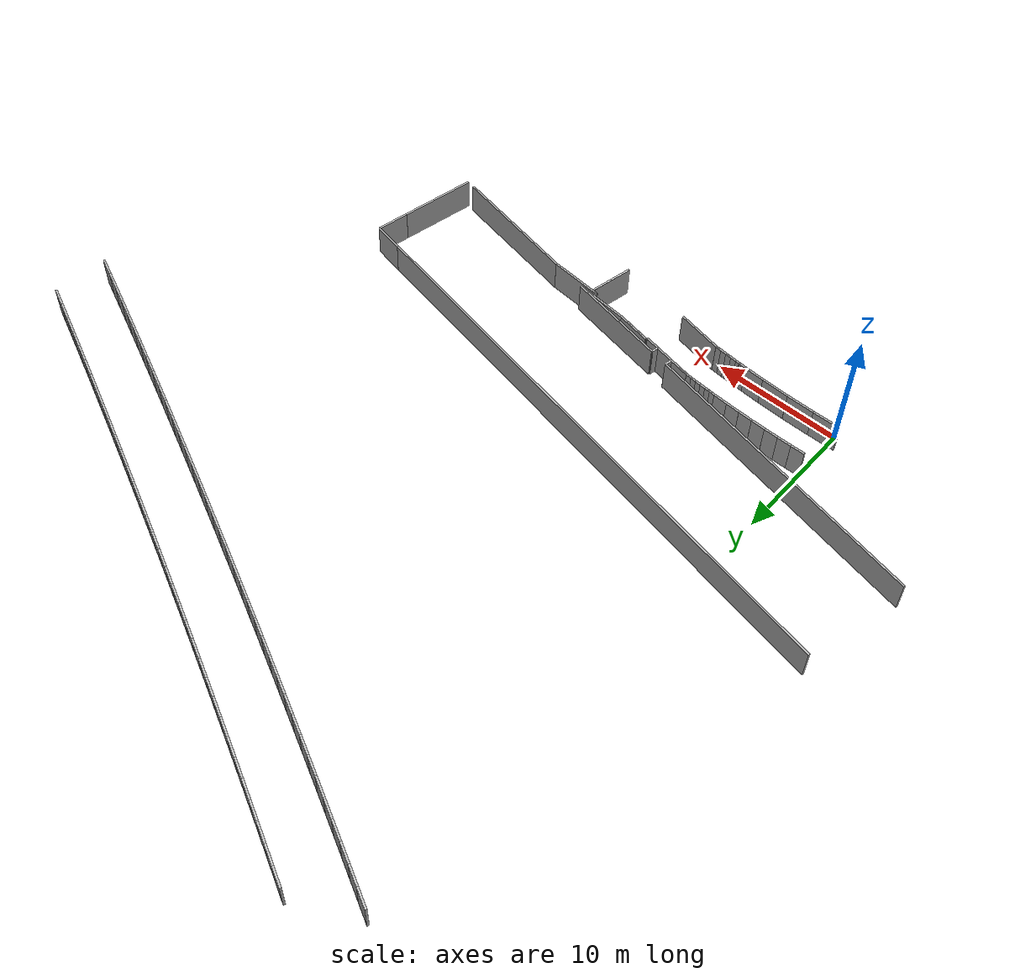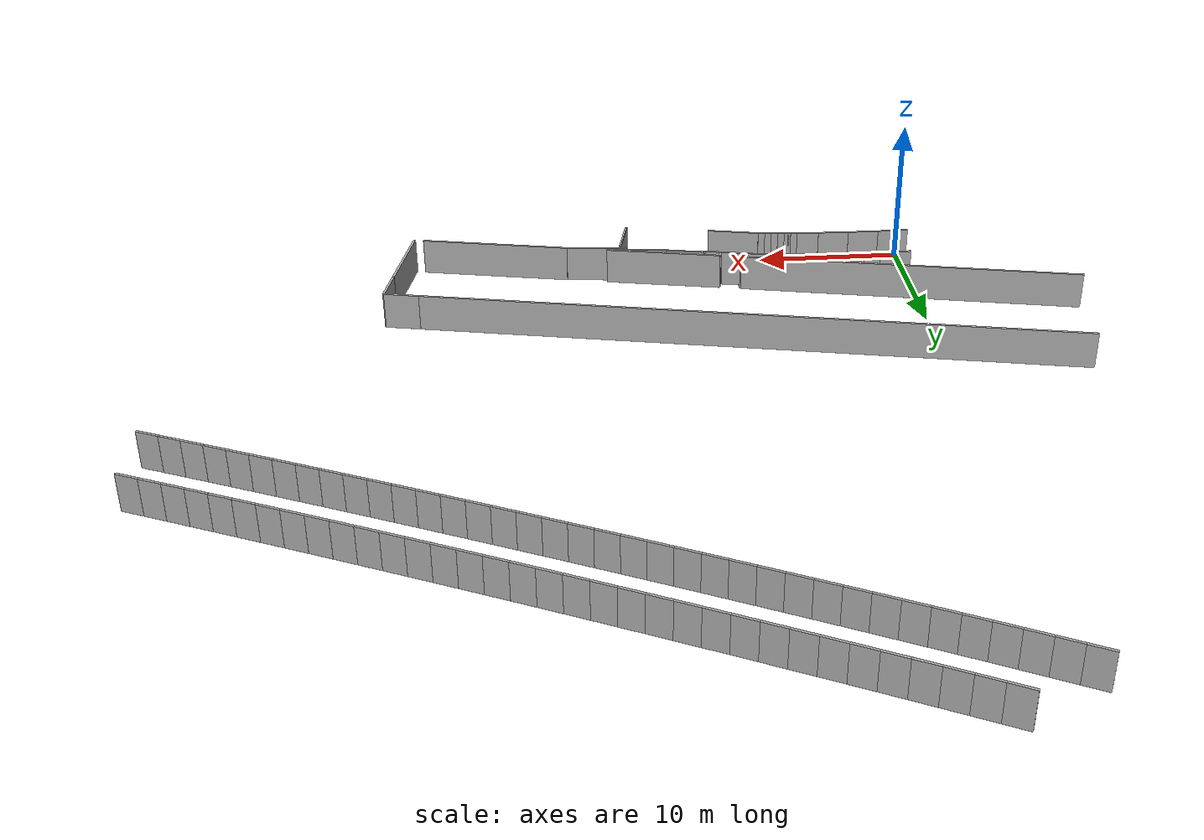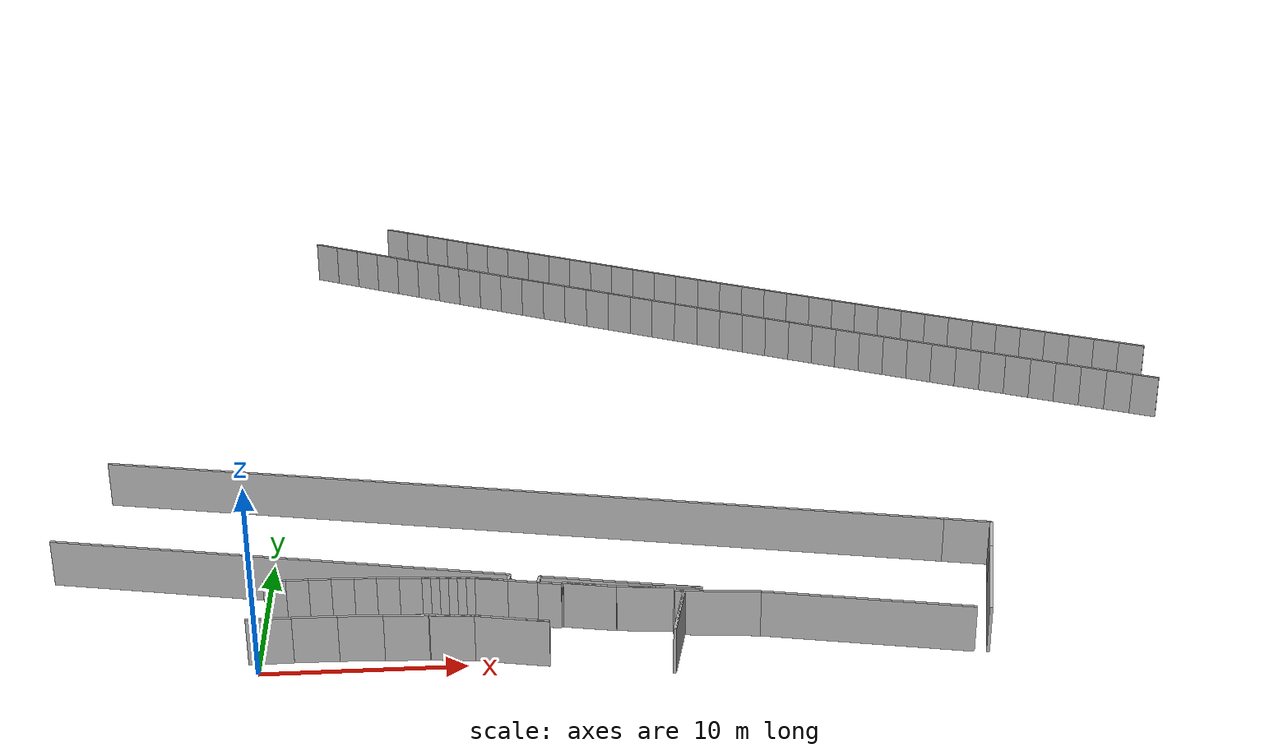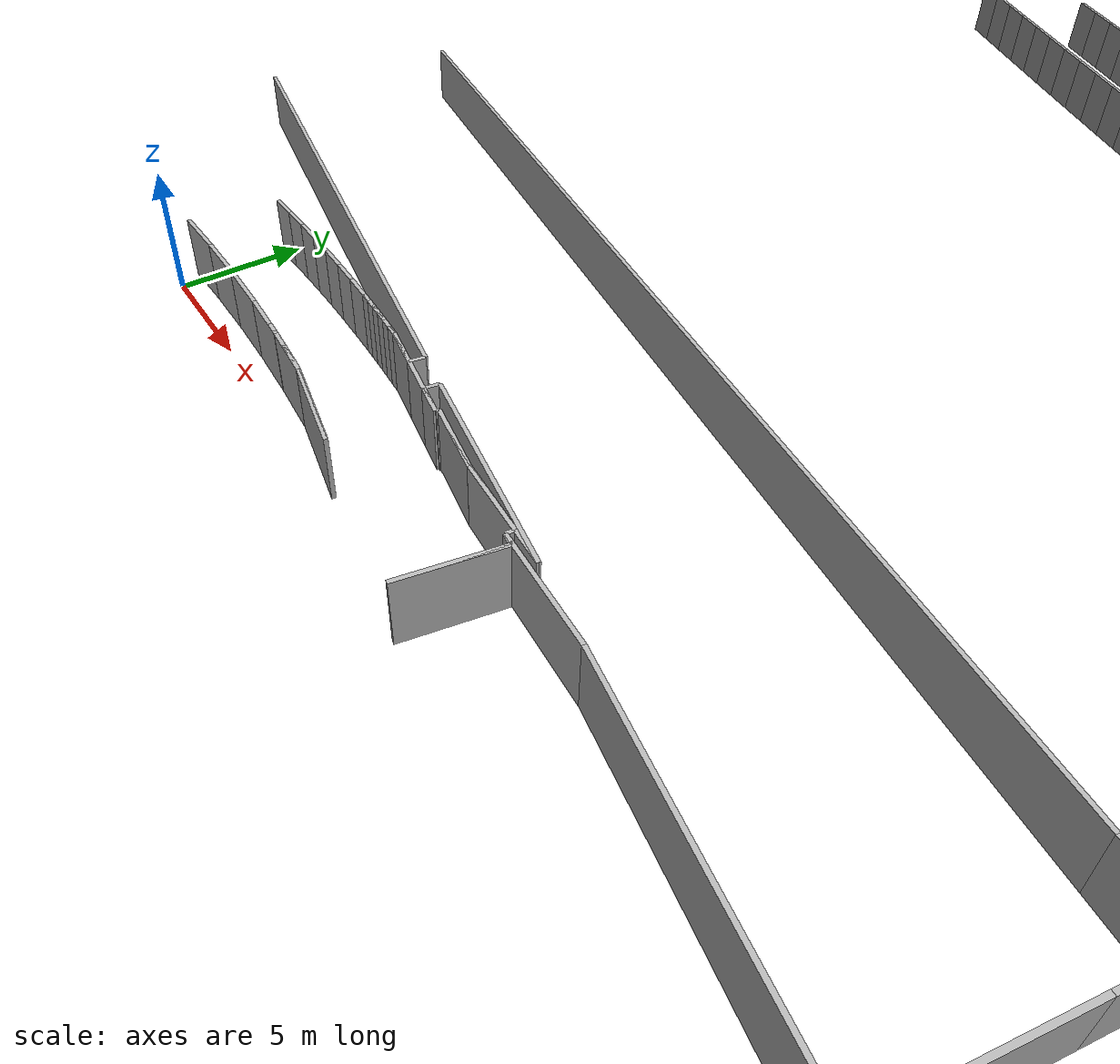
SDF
<sdf version="1.6">
 <model name="sps_1405">
  <static>1</static>
  <allow_auto_disable>0</allow_auto_disable>
  <link name="Wall19">
   <collision name="collision"><geometry><box><size>0.558052 0.15 2.5</size></box></geometry></collision>
   <visual name="visual">
    <geometry><box><size>0.558052 0.15 2.5</size></box></geometry>
    <transparency>0.0</transparency>
   </visual>
   <pose>13.4909 3.71971 1.25 0 -0 1.37308</pose>
  </link>
  <link name="Wall20">
   <collision name="collision"><geometry><box><size>2.70593 0.15 2.5</size></box></geometry></collision>
   <visual name="visual">
    <geometry><box><size>2.70593 0.15 2.5</size></box></geometry>
    <transparency>0.0</transparency>
   </visual>
   <pose>15.9428 3.06648 1.25 0 -0 2.94384</pose>
  </link>
  <link name="Wall21">
   <collision name="collision"><geometry><box><size>0.432153 0.15 2.5</size></box></geometry></collision>
   <visual name="visual">
    <geometry><box><size>0.432153 0.15 2.5</size></box></geometry>
    <transparency>0.0</transparency>
   </visual>
   <pose>20.2974 2.19389 1.25 0 0 -0.199473</pose>
  </link>
  <link name="Wall22">
   <collision name="collision"><geometry><box><size>2.40359 0.15 2.5</size></box></geometry></collision>
   <visual name="visual">
    <geometry><box><size>2.40359 0.15 2.5</size></box></geometry>
    <transparency>0.0</transparency>
   </visual>
   <pose>35.6465 8.17089 1.25 0 -0 2.9385</pose>
  </link>
  <link name="Wall23">
   <collision name="collision"><geometry><box><size>44.7209 0.15 2.5</size></box></geometry></collision>
   <visual name="visual">
    <geometry><box><size>44.7209 0.15 2.5</size></box></geometry>
    <transparency>0.0</transparency>
   </visual>
   <pose>12.5686 12.9235 1.25 0 -0 2.9385</pose>
  </link>
  <link name="Wall26">
   <collision name="collision"><geometry><box><size>10.4229 0.15 2.5</size></box></geometry></collision>
   <visual name="visual">
    <geometry><box><size>10.4229 0.15 2.5</size></box></geometry>
    <transparency>0.0</transparency>
   </visual>
   <pose>29.3646 0.798586 1.25 0 -0 2.93901</pose>
  </link>
  <link name="Wall112">
   <collision name="collision"><geometry><box><size>23.6286 0.15 2.5</size></box></geometry></collision>
   <visual name="visual">
    <geometry><box><size>23.6286 0.15 2.5</size></box></geometry>
    <transparency>0.0</transparency>
   </visual>
   <pose>0.518974 6.69759 1.25 0 -0 2.93608</pose>
  </link>
  <link name="Wall113">
   <collision name="collision"><geometry><box><size>1.18026 0.15 2.5</size></box></geometry></collision>
   <visual name="visual">
    <geometry><box><size>1.18026 0.15 2.5</size></box></geometry>
    <transparency>0.0</transparency>
   </visual>
   <pose>14.0147 3.33009 1.25 0 -0 2.94369</pose>
  </link>
  <link name="Wall114">
   <collision name="collision"><geometry><box><size>4.19215 0.15 2.5</size></box></geometry></collision>
   <visual name="visual">
    <geometry><box><size>4.19215 0.15 2.5</size></box></geometry>
    <transparency>0.0</transparency>
   </visual>
   <pose>22.1727 2.04191 1.25 0 -0 3.04853</pose>
  </link>
  <link name="Wall280">
   <collision name="collision"><geometry><box><size>0.558807 0.15 2.5</size></box></geometry></collision>
   <visual name="visual">
    <geometry><box><size>0.558807 0.15 2.5</size></box></geometry>
    <transparency>0.0</transparency>
   </visual>
   <pose>12.0295 4.0128 1.25 0 -0 1.3719</pose>
  </link>
  <link name="Wall349">
   <collision name="collision"><geometry><box><size>3.64209 0.15 2.5</size></box></geometry></collision>
   <visual name="visual">
    <geometry><box><size>3.64209 0.15 2.5</size></box></geometry>
    <transparency>0.0</transparency>
   </visual>
   <pose>12.1271 0.179488 1.25 0 -0 2.93845</pose>
  </link>
  <link name="Wall429">
   <collision name="collision"><geometry><box><size>1.63883 0.15 2.5</size></box></geometry></collision>
   <visual name="visual">
    <geometry><box><size>1.63883 0.15 2.5</size></box></geometry>
    <transparency>0.0</transparency>
   </visual>
   <pose>11.1709 3.9001 1.25 0 0 -0.198009</pose>
  </link>
  <link name="Wall430">
   <collision name="collision"><geometry><box><size>4.19215 0.15 2.5</size></box></geometry></collision>
   <visual name="visual">
    <geometry><box><size>4.19215 0.15 2.5</size></box></geometry>
    <transparency>0.0</transparency>
   </visual>
   <pose>19.3564 2.60588 1.25 0 -0 3.04853</pose>
  </link>
  <link name="Wall431">
   <collision name="collision"><geometry><box><size>8.0547 0.15 2.5</size></box></geometry></collision>
   <visual name="visual">
    <geometry><box><size>8.0547 0.15 2.5</size></box></geometry>
    <transparency>0.0</transparency>
   </visual>
   <pose>17.4946 3.20219 1.25 0 -0 2.94387</pose>
  </link>
  <link name="Wall524">
   <collision name="collision"><geometry><box><size>3.50128 0.15 2.5</size></box></geometry></collision>
   <visual name="visual">
    <geometry><box><size>3.50128 0.15 2.5</size></box></geometry>
    <transparency>0.0</transparency>
   </visual>
   <pose>20.1558 0.436477 1.25 0 0 -1.77406</pose>
  </link>
  <link name="Wall525">
   <collision name="collision"><geometry><box><size>2.50024 0.15 2.5</size></box></geometry></collision>
   <visual name="visual">
    <geometry><box><size>2.50024 0.15 2.5</size></box></geometry>
    <transparency>0.0</transparency>
   </visual>
   <pose>36.5713 6.70409 1.25 0 -0 1.36759</pose>
  </link>
  <link name="Wall607">
   <collision name="collision"><geometry><box><size>0.120432 0.15 2.5</size></box></geometry></collision>
   <visual name="visual">
    <geometry><box><size>0.120432 0.15 2.5</size></box></geometry>
    <transparency>0.0</transparency>
   </visual>
   <pose>14.6048 3.27318 1.25 0 0 -1.76253</pose>
  </link>
  <link name="Wall993">
   <collision name="collision"><geometry><box><size>5.98487 0.15 2.5</size></box></geometry></collision>
   <visual name="visual">
    <geometry><box><size>5.98487 0.15 2.5</size></box></geometry>
    <transparency>0.0</transparency>
   </visual>
   <pose>35.7154 2.54878 1.25 0 -0 1.36766</pose>
  </link>
  <link name="Wall1701">
   <collision name="collision"><geometry><box><size>1.1106 0.15 2.5</size></box></geometry></collision>
   <visual name="visual">
    <geometry><box><size>1.1106 0.15 2.5</size></box></geometry>
    <transparency>0.0</transparency>
   </visual>
   <pose>0.546867 4.43138 1.25 0 -0 0.0181918</pose>
  </link>
  <link name="Wall1702">
   <collision name="collision"><geometry><box><size>1.11043 0.15 2.5</size></box></geometry></collision>
   <visual name="visual">
    <geometry><box><size>1.11043 0.15 2.5</size></box></geometry>
    <transparency>0.0</transparency>
   </visual>
   <pose>1.65728 4.44459 1.25 0 -0 0.00560649</pose>
  </link>
  <link name="Wall1703">
   <collision name="collision"><geometry><box><size>1.11038 0.15 2.5</size></box></geometry></collision>
   <visual name="visual">
    <geometry><box><size>1.11038 0.15 2.5</size></box></geometry>
    <transparency>0.0</transparency>
   </visual>
   <pose>2.76766 4.44359 1.25 0 0 -0.00742071</pose>
  </link>
  <link name="Wall1704">
   <collision name="collision"><geometry><box><size>1.11063 0.15 2.5</size></box></geometry></collision>
   <visual name="visual">
    <geometry><box><size>1.11063 0.15 2.5</size></box></geometry>
    <transparency>0.0</transparency>
   </visual>
   <pose>3.87804 4.42848 1.25 0 0 -0.0197852</pose>
  </link>
  <link name="Wall1705">
   <collision name="collision"><geometry><box><size>1.11039 0.15 2.5</size></box></geometry></collision>
   <visual name="visual">
    <geometry><box><size>1.11039 0.15 2.5</size></box></geometry>
    <transparency>0.0</transparency>
   </visual>
   <pose>4.98815 4.3994 1.25 0 0 -0.0326013</pose>
  </link>
  <link name="Wall1706">
   <collision name="collision"><geometry><box><size>1.11033 0.15 2.5</size></box></geometry></collision>
   <visual name="visual">
    <geometry><box><size>1.11033 0.15 2.5</size></box></geometry>
    <transparency>0.0</transparency>
   </visual>
   <pose>6.09765 4.35618 1.25 0 0 -0.045256</pose>
  </link>
  <link name="Wall1707">
   <collision name="collision"><geometry><box><size>1.11041 0.15 2.5</size></box></geometry></collision>
   <visual name="visual">
    <geometry><box><size>1.11041 0.15 2.5</size></box></geometry>
    <transparency>0.0</transparency>
   </visual>
   <pose>7.20653 4.29918 1.25 0 0 -0.0574712</pose>
  </link>
  <link name="Wall1708">
   <collision name="collision"><geometry><box><size>0.436024 0.15 2.5</size></box></geometry></collision>
   <visual name="visual">
    <geometry><box><size>0.436024 0.15 2.5</size></box></geometry>
    <transparency>0.0</transparency>
   </visual>
   <pose>7.97835 4.25279 1.25 0 0 -0.0665402</pose>
  </link>
  <link name="Wall1709">
   <collision name="collision"><geometry><box><size>0.435871 0.15 2.5</size></box></geometry></collision>
   <visual name="visual">
    <geometry><box><size>0.435871 0.15 2.5</size></box></geometry>
    <transparency>0.0</transparency>
   </visual>
   <pose>8.41326 4.2227 1.25 0 0 -0.0716167</pose>
  </link>
  <link name="Wall1710">
   <collision name="collision"><geometry><box><size>0.435715 0.15 2.5</size></box></geometry></collision>
   <visual name="visual">
    <geometry><box><size>0.435715 0.15 2.5</size></box></geometry>
    <transparency>0.0</transparency>
   </visual>
   <pose>8.84786 4.1905 1.25 0 0 -0.0762777</pose>
  </link>
  <link name="Wall1711">
   <collision name="collision"><geometry><box><size>0.435827 0.15 2.5</size></box></geometry></collision>
   <visual name="visual">
    <geometry><box><size>0.435827 0.15 2.5</size></box></geometry>
    <transparency>0.0</transparency>
   </visual>
   <pose>9.28228 4.1562 1.25 0 0 -0.0813153</pose>
  </link>
  <link name="Wall1712">
   <collision name="collision"><geometry><box><size>0.435813 0.15 2.5</size></box></geometry></collision>
   <visual name="visual">
    <geometry><box><size>0.435813 0.15 2.5</size></box></geometry>
    <transparency>0.0</transparency>
   </visual>
   <pose>9.71657 4.1198 1.25 0 0 -0.0859558</pose>
  </link>
  <link name="Wall1713">
   <collision name="collision"><geometry><box><size>0.435781 0.15 2.5</size></box></geometry></collision>
   <visual name="visual">
    <geometry><box><size>0.435781 0.15 2.5</size></box></geometry>
    <transparency>0.0</transparency>
   </visual>
   <pose>10.1507 4.08119 1.25 0 0 -0.0914461</pose>
  </link>
  <link name="Wall1714">
   <collision name="collision"><geometry><box><size>1.63901 0.15 2.5</size></box></geometry></collision>
   <visual name="visual">
    <geometry><box><size>1.63901 0.15 2.5</size></box></geometry>
    <transparency>0.0</transparency>
   </visual>
   <pose>11.1711 3.9001 1.25 0 0 -0.197987</pose>
  </link>
  <link name="Wall1715">
   <collision name="collision"><geometry><box><size>1.49061 0.15 2.5</size></box></geometry></collision>
   <visual name="visual">
    <geometry><box><size>1.49061 0.15 2.5</size></box></geometry>
    <transparency>0.0</transparency>
   </visual>
   <pose>12.7054 3.5926 1.25 0 0 -0.19758</pose>
  </link>
  <link name="Wall1716">
   <collision name="collision"><geometry><box><size>1.1803 0.15 2.5</size></box></geometry></collision>
   <visual name="visual">
    <geometry><box><size>1.1803 0.15 2.5</size></box></geometry>
    <transparency>0.0</transparency>
   </visual>
   <pose>14.0149 3.33018 1.25 0 0 -0.198055</pose>
  </link>
  <link name="Wall1717">
   <collision name="collision"><geometry><box><size>0.120623 0.15 2.5</size></box></geometry></collision>
   <visual name="visual">
    <geometry><box><size>0.120623 0.15 2.5</size></box></geometry>
    <transparency>0.0</transparency>
   </visual>
   <pose>14.605 3.27327 1.25 0 -0 1.37886</pose>
  </link>
  <link name="Wall1718">
   <collision name="collision"><geometry><box><size>2.70597 0.15 2.5</size></box></geometry></collision>
   <visual name="visual">
    <geometry><box><size>2.70597 0.15 2.5</size></box></geometry>
    <transparency>0.0</transparency>
   </visual>
   <pose>15.9431 3.06657 1.25 0 0 -0.197816</pose>
  </link>
  <link name="Wall1719">
   <collision name="collision"><geometry><box><size>2.85635 0.15 2.5</size></box></geometry></collision>
   <visual name="visual">
    <geometry><box><size>2.85635 0.15 2.5</size></box></geometry>
    <transparency>0.0</transparency>
   </visual>
   <pose>18.6917 2.66798 1.25 0 0 -0.0930433</pose>
  </link>
  <link name="Wall1720">
   <collision name="collision"><geometry><box><size>0.299878 0.15 2.5</size></box></geometry></collision>
   <visual name="visual">
    <geometry><box><size>0.299878 0.15 2.5</size></box></geometry>
    <transparency>0.0</transparency>
   </visual>
   <pose>20.0998 2.386 1.25 0 0 -1.66374</pose>
  </link>
  <link name="Wall1721">
   <collision name="collision"><geometry><box><size>0.432213 0.15 2.5</size></box></geometry></collision>
   <visual name="visual">
    <geometry><box><size>0.432213 0.15 2.5</size></box></geometry>
    <transparency>0.0</transparency>
   </visual>
   <pose>20.2977 2.19389 1.25 0 0 -0.199445</pose>
  </link>
  <link name="Wall1722">
   <collision name="collision"><geometry><box><size>3.50124 0.15 2.5</size></box></geometry></collision>
   <visual name="visual">
    <geometry><box><size>3.50124 0.15 2.5</size></box></geometry>
    <transparency>0.0</transparency>
   </visual>
   <pose>20.1562 0.436477 1.25 0 0 -1.77401</pose>
  </link>
  <link name="Wall1725">
   <collision name="collision"><geometry><box><size>3.64191 0.15 2.5</size></box></geometry></collision>
   <visual name="visual">
    <geometry><box><size>3.64191 0.15 2.5</size></box></geometry>
    <transparency>0.0</transparency>
   </visual>
   <pose>12.1273 0.179488 1.25 0 -0 2.93844</pose>
  </link>
  <link name="Wall1726">
   <collision name="collision"><geometry><box><size>2.18198 0.15 2.5</size></box></geometry></collision>
   <visual name="visual">
    <geometry><box><size>2.18198 0.15 2.5</size></box></geometry>
    <transparency>0.0</transparency>
   </visual>
   <pose>9.25674 0.638991 1.25 0 -0 3.05707</pose>
  </link>
  <link name="Wall1727">
   <collision name="collision"><geometry><box><size>2.18191 0.15 2.5</size></box></geometry></collision>
   <visual name="visual">
    <geometry><box><size>2.18191 0.15 2.5</size></box></geometry>
    <transparency>0.0</transparency>
   </visual>
   <pose>7.08056 0.794997 1.25 0 -0 3.08298</pose>
  </link>
  <link name="Wall1728">
   <collision name="collision"><geometry><box><size>2.18202 0.15 2.5</size></box></geometry></collision>
   <visual name="visual">
    <geometry><box><size>2.18202 0.15 2.5</size></box></geometry>
    <transparency>0.0</transparency>
   </visual>
   <pose>4.90105 0.894698 1.25 0 -0 3.10878</pose>
  </link>
  <link name="Wall1729">
   <collision name="collision"><geometry><box><size>2.18182 0.15 2.5</size></box></geometry></collision>
   <visual name="visual">
    <geometry><box><size>2.18182 0.15 2.5</size></box></geometry>
    <transparency>0.0</transparency>
   </visual>
   <pose>2.71975 0.938094 1.25 0 -0 3.13463</pose>
  </link>
  <link name="Wall1730">
   <collision name="collision"><geometry><box><size>2.18203 0.15 2.5</size></box></geometry></collision>
   <visual name="visual">
    <geometry><box><size>2.18203 0.15 2.5</size></box></geometry>
    <transparency>0.0</transparency>
   </visual>
   <pose>0.538047 0.925094 1.25 0 0 -3.12271</pose>
  </link>
  <link name="Wall2688">
   <collision name="collision"><geometry><box><size>0.469425 0.15 2.5</size></box></geometry></collision>
   <visual name="visual">
    <geometry><box><size>0.469425 0.15 2.5</size></box></geometry>
    <transparency>0.0</transparency>
   </visual>
   <pose>7.76986 0.758498 1.25 0 0 -0.0666201</pose>
  </link>
  <link name="Wall2689">
   <collision name="collision"><geometry><box><size>0.469616 0.15 2.5</size></box></geometry></collision>
   <visual name="visual">
    <geometry><box><size>0.469616 0.15 2.5</size></box></geometry>
    <transparency>0.0</transparency>
   </visual>
   <pose>8.23824 0.725875 1.25 0 0 -0.0724557</pose>
  </link>
  <link name="Wall2690">
   <collision name="collision"><geometry><box><size>0.469443 0.15 2.5</size></box></geometry></collision>
   <visual name="visual">
    <geometry><box><size>0.469443 0.15 2.5</size></box></geometry>
    <transparency>0.0</transparency>
   </visual>
   <pose>8.70644 0.690596 1.25 0 0 -0.0779585</pose>
  </link>
  <link name="Wall2691">
   <collision name="collision"><geometry><box><size>0.469417 0.15 2.5</size></box></geometry></collision>
   <visual name="visual">
    <geometry><box><size>0.469417 0.15 2.5</size></box></geometry>
    <transparency>0.0</transparency>
   </visual>
   <pose>9.17434 0.652694 1.25 0 0 -0.0837027</pose>
  </link>
  <link name="Wall2692">
   <collision name="collision"><geometry><box><size>0.469715 0.15 2.5</size></box></geometry></collision>
   <visual name="visual">
    <geometry><box><size>0.469715 0.15 2.5</size></box></geometry>
    <transparency>0.0</transparency>
   </visual>
   <pose>9.64214 0.612075 1.25 0 0 -0.0895188</pose>
  </link>
  <link name="Wall2693">
   <collision name="collision"><geometry><box><size>0.469491 0.15 2.5</size></box></geometry></collision>
   <visual name="visual">
    <geometry><box><size>0.469491 0.15 2.5</size></box></geometry>
    <transparency>0.0</transparency>
   </visual>
   <pose>10.1098 0.568984 1.25 0 0 -0.0942615</pose>
  </link>
  <link name="Wall3531">
   <collision name="collision"><geometry><box><size>0.43595 0.15 2.5</size></box></geometry></collision>
   <visual name="visual">
    <geometry><box><size>0.43595 0.15 2.5</size></box></geometry>
    <transparency>0.0</transparency>
   </visual>
   <pose>7.97814 4.2527 1.25 0 0 -0.0661305</pose>
  </link>
  <link name="Wall3532">
   <collision name="collision"><geometry><box><size>0.435749 0.15 2.5</size></box></geometry></collision>
   <visual name="visual">
    <geometry><box><size>0.435749 0.15 2.5</size></box></geometry>
    <transparency>0.0</transparency>
   </visual>
   <pose>8.41296 4.2227 1.25 0 0 -0.0716368</pose>
  </link>
  <link name="Wall3533">
   <collision name="collision"><geometry><box><size>0.435837 0.15 2.5</size></box></geometry></collision>
   <visual name="visual">
    <geometry><box><size>0.435837 0.15 2.5</size></box></geometry>
    <transparency>0.0</transparency>
   </visual>
   <pose>8.84756 4.1905 1.25 0 0 -0.0762563</pose>
  </link>
  <link name="Wall3534">
   <collision name="collision"><geometry><box><size>0.435827 0.15 2.5</size></box></geometry></collision>
   <visual name="visual">
    <geometry><box><size>0.435827 0.15 2.5</size></box></geometry>
    <transparency>0.0</transparency>
   </visual>
   <pose>9.28204 4.1562 1.25 0 0 -0.0813153</pose>
  </link>
  <link name="Wall3535">
   <collision name="collision"><geometry><box><size>0.435829 0.15 2.5</size></box></geometry></collision>
   <visual name="visual">
    <geometry><box><size>0.435829 0.15 2.5</size></box></geometry>
    <transparency>0.0</transparency>
   </visual>
   <pose>9.71633 4.1197 1.25 0 0 -0.0863744</pose>
  </link>
  <link name="Wall3536">
   <collision name="collision"><geometry><box><size>0.435825 0.15 2.5</size></box></geometry></collision>
   <visual name="visual">
    <geometry><box><size>0.435825 0.15 2.5</size></box></geometry>
    <transparency>0.0</transparency>
   </visual>
   <pose>10.1504 4.0811 1.25 0 0 -0.0910149</pose>
  </link>
  <link name="Wall8710">
   <collision name="collision"><geometry><box><size>1.49888 0.15 2.5</size></box></geometry></collision>
   <visual name="visual">
    <geometry><box><size>1.49888 0.15 2.5</size></box></geometry>
    <transparency>0.0</transparency>
   </visual>
   <pose>0.674766 47.654 1.25 0 0 -0.473117</pose>
  </link>
  <link name="Wall8711">
   <collision name="collision"><geometry><box><size>1.49894 0.15 2.5</size></box></geometry></collision>
   <visual name="visual">
    <geometry><box><size>1.49894 0.15 2.5</size></box></geometry>
    <transparency>0.0</transparency>
   </visual>
   <pose>2.00957 46.9721 1.25 0 0 -0.471496</pose>
  </link>
  <link name="Wall8712">
   <collision name="collision"><geometry><box><size>1.49895 0.15 2.5</size></box></geometry></collision>
   <visual name="visual">
    <geometry><box><size>1.49895 0.15 2.5</size></box></geometry>
    <transparency>0.0</transparency>
   </visual>
   <pose>3.34545 46.2922 1.25 0 0 -0.470076</pose>
  </link>
  <link name="Wall8713">
   <collision name="collision"><geometry><box><size>1.49904 0.15 2.5</size></box></geometry></collision>
   <visual name="visual">
    <geometry><box><size>1.49904 0.15 2.5</size></box></geometry>
    <transparency>0.0</transparency>
   </visual>
   <pose>4.68246 45.6144 1.25 0 0 -0.468309</pose>
  </link>
  <link name="Wall8714">
   <collision name="collision"><geometry><box><size>1.49893 0.15 2.5</size></box></geometry></collision>
   <visual name="visual">
    <geometry><box><size>1.49893 0.15 2.5</size></box></geometry>
    <transparency>0.0</transparency>
   </visual>
   <pose>6.02056 44.9388 1.25 0 0 -0.466798</pose>
  </link>
  <link name="Wall8715">
   <collision name="collision"><geometry><box><size>1.49889 0.15 2.5</size></box></geometry></collision>
   <visual name="visual">
    <geometry><box><size>1.49889 0.15 2.5</size></box></geometry>
    <transparency>0.0</transparency>
   </visual>
   <pose>7.35964 44.2653 1.25 0 0 -0.465214</pose>
  </link>
  <link name="Wall8716">
   <collision name="collision"><geometry><box><size>1.49908 0.15 2.5</size></box></geometry></collision>
   <visual name="visual">
    <geometry><box><size>1.49908 0.15 2.5</size></box></geometry>
    <transparency>0.0</transparency>
   </visual>
   <pose>8.69985 43.5939 1.25 0 0 -0.463648</pose>
  </link>
  <link name="Wall8717">
   <collision name="collision"><geometry><box><size>1.49887 0.15 2.5</size></box></geometry></collision>
   <visual name="visual">
    <geometry><box><size>1.49887 0.15 2.5</size></box></geometry>
    <transparency>0.0</transparency>
   </visual>
   <pose>10.0412 42.9247 1.25 0 0 -0.461899</pose>
  </link>
  <link name="Wall8718">
   <collision name="collision"><geometry><box><size>1.49887 0.15 2.5</size></box></geometry></collision>
   <visual name="visual">
    <geometry><box><size>1.49887 0.15 2.5</size></box></geometry>
    <transparency>0.0</transparency>
   </visual>
   <pose>11.3834 42.2577 1.25 0 0 -0.460442</pose>
  </link>
  <link name="Wall8719">
   <collision name="collision"><geometry><box><size>1.49891 0.15 2.5</size></box></geometry></collision>
   <visual name="visual">
    <geometry><box><size>1.49891 0.15 2.5</size></box></geometry>
    <transparency>0.0</transparency>
   </visual>
   <pose>12.7267 41.5927 1.25 0 0 -0.458931</pose>
  </link>
  <link name="Wall8720">
   <collision name="collision"><geometry><box><size>1.49903 0.15 2.5</size></box></geometry></collision>
   <visual name="visual">
    <geometry><box><size>1.49903 0.15 2.5</size></box></geometry>
    <transparency>0.0</transparency>
   </visual>
   <pose>14.0712 40.9298 1.25 0 0 -0.457256</pose>
  </link>
  <link name="Wall8721">
   <collision name="collision"><geometry><box><size>1.49894 0.15 2.5</size></box></geometry></collision>
   <visual name="visual">
    <geometry><box><size>1.49894 0.15 2.5</size></box></geometry>
    <transparency>0.0</transparency>
   </visual>
   <pose>15.4167 40.2691 1.25 0 0 -0.455653</pose>
  </link>
  <link name="Wall8722">
   <collision name="collision"><geometry><box><size>1.4991 0.15 2.5</size></box></geometry></collision>
   <visual name="visual">
    <geometry><box><size>1.4991 0.15 2.5</size></box></geometry>
    <transparency>0.0</transparency>
   </visual>
   <pose>16.7633 39.6105 1.25 0 0 -0.454106</pose>
  </link>
  <link name="Wall8723">
   <collision name="collision"><geometry><box><size>1.49876 0.15 2.5</size></box></geometry></collision>
   <visual name="visual">
    <geometry><box><size>1.49876 0.15 2.5</size></box></geometry>
    <transparency>0.0</transparency>
   </visual>
   <pose>18.1107 38.9539 1.25 0 0 -0.45272</pose>
  </link>
  <link name="Wall8724">
   <collision name="collision"><geometry><box><size>1.49904 0.15 2.5</size></box></geometry></collision>
   <visual name="visual">
    <geometry><box><size>1.49904 0.15 2.5</size></box></geometry>
    <transparency>0.0</transparency>
   </visual>
   <pose>19.4593 38.2995 1.25 0 0 -0.450865</pose>
  </link>
  <link name="Wall8725">
   <collision name="collision"><geometry><box><size>1.49885 0.15 2.5</size></box></geometry></collision>
   <visual name="visual">
    <geometry><box><size>1.49885 0.15 2.5</size></box></geometry>
    <transparency>0.0</transparency>
   </visual>
   <pose>20.8089 37.6473 1.25 0 0 -0.449479</pose>
  </link>
  <link name="Wall8726">
   <collision name="collision"><geometry><box><size>1.49897 0.15 2.5</size></box></geometry></collision>
   <visual name="visual">
    <geometry><box><size>1.49897 0.15 2.5</size></box></geometry>
    <transparency>0.0</transparency>
   </visual>
   <pose>22.1594 36.9972 1.25 0 0 -0.447768</pose>
  </link>
  <link name="Wall8727">
   <collision name="collision"><geometry><box><size>1.49904 0.15 2.5</size></box></geometry></collision>
   <visual name="visual">
    <geometry><box><size>1.49904 0.15 2.5</size></box></geometry>
    <transparency>0.0</transparency>
   </visual>
   <pose>23.5112 36.3492 1.25 0 0 -0.446257</pose>
  </link>
  <link name="Wall8728">
   <collision name="collision"><geometry><box><size>1.49884 0.15 2.5</size></box></geometry></collision>
   <visual name="visual">
    <geometry><box><size>1.49884 0.15 2.5</size></box></geometry>
    <transparency>0.0</transparency>
   </visual>
   <pose>24.8639 35.7034 1.25 0 0 -0.444561</pose>
  </link>
  <link name="Wall8729">
   <collision name="collision"><geometry><box><size>1.49899 0.15 2.5</size></box></geometry></collision>
   <visual name="visual">
    <geometry><box><size>1.49899 0.15 2.5</size></box></geometry>
    <transparency>0.0</transparency>
   </visual>
   <pose>26.2176 35.0598 1.25 0 0 -0.44307</pose>
  </link>
  <link name="Wall8730">
   <collision name="collision"><geometry><box><size>1.49893 0.15 2.5</size></box></geometry></collision>
   <visual name="visual">
    <geometry><box><size>1.49893 0.15 2.5</size></box></geometry>
    <transparency>0.0</transparency>
   </visual>
   <pose>27.5723 34.4182 1.25 0 0 -0.441557</pose>
  </link>
  <link name="Wall8731">
   <collision name="collision"><geometry><box><size>1.49888 0.15 2.5</size></box></geometry></collision>
   <visual name="visual">
    <geometry><box><size>1.49888 0.15 2.5</size></box></geometry>
    <transparency>0.0</transparency>
   </visual>
   <pose>28.9279 33.7788 1.25 0 0 -0.439862</pose>
  </link>
  <link name="Wall8732">
   <collision name="collision"><geometry><box><size>1.49901 0.15 2.5</size></box></geometry></collision>
   <visual name="visual">
    <geometry><box><size>1.49901 0.15 2.5</size></box></geometry>
    <transparency>0.0</transparency>
   </visual>
   <pose>30.2847 33.1415 1.25 0 0 -0.438425</pose>
  </link>
  <link name="Wall8733">
   <collision name="collision"><geometry><box><size>1.49886 0.15 2.5</size></box></geometry></collision>
   <visual name="visual">
    <geometry><box><size>1.49886 0.15 2.5</size></box></geometry>
    <transparency>0.0</transparency>
   </visual>
   <pose>31.6424 32.5063 1.25 0 0 -0.436765</pose>
  </link>
  <link name="Wall8734">
   <collision name="collision"><geometry><box><size>1.49901 0.15 2.5</size></box></geometry></collision>
   <visual name="visual">
    <geometry><box><size>1.49901 0.15 2.5</size></box></geometry>
    <transparency>0.0</transparency>
   </visual>
   <pose>33.0011 31.8733 1.25 0 0 -0.435237</pose>
  </link>
  <link name="Wall8735">
   <collision name="collision"><geometry><box><size>1.49881 0.15 2.5</size></box></geometry></collision>
   <visual name="visual">
    <geometry><box><size>1.49881 0.15 2.5</size></box></geometry>
    <transparency>0.0</transparency>
   </visual>
   <pose>34.3608 31.2425 1.25 0 0 -0.433503</pose>
  </link>
  <link name="Wall8736">
   <collision name="collision"><geometry><box><size>1.49901 0.15 2.5</size></box></geometry></collision>
   <visual name="visual">
    <geometry><box><size>1.49901 0.15 2.5</size></box></geometry>
    <transparency>0.0</transparency>
   </visual>
   <pose>35.7215 30.6138 1.25 0 0 -0.43214</pose>
  </link>
  <link name="Wall8737">
   <collision name="collision"><geometry><box><size>1.49887 0.15 2.5</size></box></geometry></collision>
   <visual name="visual">
    <geometry><box><size>1.49887 0.15 2.5</size></box></geometry>
    <transparency>0.0</transparency>
   </visual>
   <pose>37.0832 29.9872 1.25 0 0 -0.430388</pose>
  </link>
  <link name="Wall8738">
   <collision name="collision"><geometry><box><size>1.49893 0.15 2.5</size></box></geometry></collision>
   <visual name="visual">
    <geometry><box><size>1.49893 0.15 2.5</size></box></geometry>
    <transparency>0.0</transparency>
   </visual>
   <pose>38.4459 29.3629 1.25 0 0 -0.428804</pose>
  </link>
  <link name="Wall8739">
   <collision name="collision"><geometry><box><size>1.49898 0.15 2.5</size></box></geometry></collision>
   <visual name="visual">
    <geometry><box><size>1.49898 0.15 2.5</size></box></geometry>
    <transparency>0.0</transparency>
   </visual>
   <pose>39.8096 28.7407 1.25 0 0 -0.427312</pose>
  </link>
  <link name="Wall8740">
   <collision name="collision"><geometry><box><size>1.49894 0.15 2.5</size></box></geometry></collision>
   <visual name="visual">
    <geometry><box><size>1.49894 0.15 2.5</size></box></geometry>
    <transparency>0.0</transparency>
   </visual>
   <pose>41.1742 28.1206 1.25 0 0 -0.42567</pose>
  </link>
  <link name="Wall8741">
   <collision name="collision"><geometry><box><size>1.49908 0.15 2.5</size></box></geometry></collision>
   <visual name="visual">
    <geometry><box><size>1.49908 0.15 2.5</size></box></geometry>
    <transparency>0.0</transparency>
   </visual>
   <pose>42.5399 27.5026 1.25 0 0 -0.424198</pose>
  </link>
  <link name="Wall8742">
   <collision name="collision"><geometry><box><size>1.49899 0.15 2.5</size></box></geometry></collision>
   <visual name="visual">
    <geometry><box><size>1.49899 0.15 2.5</size></box></geometry>
    <transparency>0.0</transparency>
   </visual>
   <pose>43.9066 26.8868 1.25 0 0 -0.422483</pose>
  </link>
  <link name="Wall8743">
   <collision name="collision"><geometry><box><size>1.49894 0.15 2.5</size></box></geometry></collision>
   <visual name="visual">
    <geometry><box><size>1.49894 0.15 2.5</size></box></geometry>
    <transparency>0.0</transparency>
   </visual>
   <pose>45.2743 26.2732 1.25 0 0 -0.421023</pose>
  </link>
  <link name="Wall8744">
   <collision name="collision"><geometry><box><size>1.49878 0.15 2.5</size></box></geometry></collision>
   <visual name="visual">
    <geometry><box><size>1.49878 0.15 2.5</size></box></geometry>
    <transparency>0.0</transparency>
   </visual>
   <pose>46.6428 25.6618 1.25 0 0 -0.419287</pose>
  </link>
  <link name="Wall8745">
   <collision name="collision"><geometry><box><size>1.49894 0.15 2.5</size></box></geometry></collision>
   <visual name="visual">
    <geometry><box><size>1.49894 0.15 2.5</size></box></geometry>
    <transparency>0.0</transparency>
   </visual>
   <pose>48.0122 25.0526 1.25 0 0 -0.417815</pose>
  </link>
  <link name="Wall8746">
   <collision name="collision"><geometry><box><size>1.49883 0.15 2.5</size></box></geometry></collision>
   <visual name="visual">
    <geometry><box><size>1.49883 0.15 2.5</size></box></geometry>
    <transparency>0.0</transparency>
   </visual>
   <pose>49.3827 24.4455 1.25 0 0 -0.416244</pose>
  </link>
  <link name="Wall9793">
   <collision name="collision"><geometry><box><size>1.49256 0.15 2.5</size></box></geometry></collision>
   <visual name="visual">
    <geometry><box><size>1.49256 0.15 2.5</size></box></geometry>
    <transparency>0.0</transparency>
   </visual>
   <pose>5.22024 49.9836 1.25 0 0 -0.469866</pose>
  </link>
  <link name="Wall9794">
   <collision name="collision"><geometry><box><size>1.49239 0.15 2.5</size></box></geometry></collision>
   <visual name="visual">
    <geometry><box><size>1.49239 0.15 2.5</size></box></geometry>
    <transparency>0.0</transparency>
   </visual>
   <pose>6.55144 49.3088 1.25 0 0 -0.468458</pose>
  </link>
  <link name="Wall9795">
   <collision name="collision"><geometry><box><size>1.49237 0.15 2.5</size></box></geometry></collision>
   <visual name="visual">
    <geometry><box><size>1.49237 0.15 2.5</size></box></geometry>
    <transparency>0.0</transparency>
   </visual>
   <pose>7.88366 48.6362 1.25 0 0 -0.466629</pose>
  </link>
  <link name="Wall9796">
   <collision name="collision"><geometry><box><size>1.49245 0.15 2.5</size></box></geometry></collision>
   <visual name="visual">
    <geometry><box><size>1.49245 0.15 2.5</size></box></geometry>
    <transparency>0.0</transparency>
   </visual>
   <pose>9.21697 47.9657 1.25 0 0 -0.465275</pose>
  </link>
  <link name="Wall9797">
   <collision name="collision"><geometry><box><size>1.49231 0.15 2.5</size></box></geometry></collision>
   <visual name="visual">
    <geometry><box><size>1.49231 0.15 2.5</size></box></geometry>
    <transparency>0.0</transparency>
   </visual>
   <pose>10.5513 47.2972 1.25 0 0 -0.463629</pose>
  </link>
  <link name="Wall9798">
   <collision name="collision"><geometry><box><size>1.49245 0.15 2.5</size></box></geometry></collision>
   <visual name="visual">
    <geometry><box><size>1.49245 0.15 2.5</size></box></geometry>
    <transparency>0.0</transparency>
   </visual>
   <pose>11.8866 46.6309 1.25 0 0 -0.461983</pose>
  </link>
  <link name="Wall9799">
   <collision name="collision"><geometry><box><size>1.49227 0.15 2.5</size></box></geometry></collision>
   <visual name="visual">
    <geometry><box><size>1.49227 0.15 2.5</size></box></geometry>
    <transparency>0.0</transparency>
   </visual>
   <pose>13.223 45.9667 1.25 0 0 -0.460538</pose>
  </link>
  <link name="Wall9800">
   <collision name="collision"><geometry><box><size>1.49239 0.15 2.5</size></box></geometry></collision>
   <visual name="visual">
    <geometry><box><size>1.49239 0.15 2.5</size></box></geometry>
    <transparency>0.0</transparency>
   </visual>
   <pose>14.5604 45.3046 1.25 0 0 -0.458856</pose>
  </link>
  <link name="Wall9801">
   <collision name="collision"><geometry><box><size>1.49237 0.15 2.5</size></box></geometry></collision>
   <visual name="visual">
    <geometry><box><size>1.49237 0.15 2.5</size></box></geometry>
    <transparency>0.0</transparency>
   </visual>
   <pose>15.8989 44.6446 1.25 0 0 -0.457356</pose>
  </link>
  <link name="Wall9802">
   <collision name="collision"><geometry><box><size>1.4925 0.15 2.5</size></box></geometry></collision>
   <visual name="visual">
    <geometry><box><size>1.4925 0.15 2.5</size></box></geometry>
    <transparency>0.0</transparency>
   </visual>
   <pose>17.2385 43.9867 1.25 0 0 -0.455674</pose>
  </link>
  <link name="Wall9803">
   <collision name="collision"><geometry><box><size>1.49241 0.15 2.5</size></box></geometry></collision>
   <visual name="visual">
    <geometry><box><size>1.49241 0.15 2.5</size></box></geometry>
    <transparency>0.0</transparency>
   </visual>
   <pose>18.5792 43.331 1.25 0 0 -0.454064</pose>
  </link>
  <link name="Wall9804">
   <collision name="collision"><geometry><box><size>1.49246 0.15 2.5</size></box></geometry></collision>
   <visual name="visual">
    <geometry><box><size>1.49246 0.15 2.5</size></box></geometry>
    <transparency>0.0</transparency>
   </visual>
   <pose>19.921 42.6774 1.25 0 0 -0.452546</pose>
  </link>
  <link name="Wall9805">
   <collision name="collision"><geometry><box><size>1.49221 0.15 2.5</size></box></geometry></collision>
   <visual name="visual">
    <geometry><box><size>1.49221 0.15 2.5</size></box></geometry>
    <transparency>0.0</transparency>
   </visual>
   <pose>21.2636 42.0259 1.25 0 0 -0.450989</pose>
  </link>
  <link name="Wall9806">
   <collision name="collision"><geometry><box><size>1.49238 0.15 2.5</size></box></geometry></collision>
   <visual name="visual">
    <geometry><box><size>1.49238 0.15 2.5</size></box></geometry>
    <transparency>0.0</transparency>
   </visual>
   <pose>22.6072 41.3765 1.25 0 0 -0.449436</pose>
  </link>
  <link name="Wall9807">
   <collision name="collision"><geometry><box><size>1.49256 0.15 2.5</size></box></geometry></collision>
   <visual name="visual">
    <geometry><box><size>1.49256 0.15 2.5</size></box></geometry>
    <transparency>0.0</transparency>
   </visual>
   <pose>23.952 40.7292 1.25 0 0 -0.447791</pose>
  </link>
  <link name="Wall9808">
   <collision name="collision"><geometry><box><size>1.49237 0.15 2.5</size></box></geometry></collision>
   <visual name="visual">
    <geometry><box><size>1.49237 0.15 2.5</size></box></geometry>
    <transparency>0.0</transparency>
   </visual>
   <pose>25.2978 40.084 1.25 0 0 -0.446308</pose>
  </link>
  <link name="Wall9809">
   <collision name="collision"><geometry><box><size>1.49231 0.15 2.5</size></box></geometry></collision>
   <visual name="visual">
    <geometry><box><size>1.49231 0.15 2.5</size></box></geometry>
    <transparency>0.0</transparency>
   </visual>
   <pose>26.6445 39.441 1.25 0 0 -0.444606</pose>
  </link>
  <link name="Wall9810">
   <collision name="collision"><geometry><box><size>1.49255 0.15 2.5</size></box></geometry></collision>
   <visual name="visual">
    <geometry><box><size>1.49255 0.15 2.5</size></box></geometry>
    <transparency>0.0</transparency>
   </visual>
   <pose>27.9923 38.8001 1.25 0 0 -0.443127</pose>
  </link>
  <link name="Wall9811">
   <collision name="collision"><geometry><box><size>1.49244 0.15 2.5</size></box></geometry></collision>
   <visual name="visual">
    <geometry><box><size>1.49244 0.15 2.5</size></box></geometry>
    <transparency>0.0</transparency>
   </visual>
   <pose>29.3411 38.1613 1.25 0 0 -0.441442</pose>
  </link>
  <link name="Wall9812">
   <collision name="collision"><geometry><box><size>1.49235 0.15 2.5</size></box></geometry></collision>
   <visual name="visual">
    <geometry><box><size>1.49235 0.15 2.5</size></box></geometry>
    <transparency>0.0</transparency>
   </visual>
   <pose>30.6909 37.5247 1.25 0 0 -0.439978</pose>
  </link>
  <link name="Wall9813">
   <collision name="collision"><geometry><box><size>1.49244 0.15 2.5</size></box></geometry></collision>
   <visual name="visual">
    <geometry><box><size>1.49244 0.15 2.5</size></box></geometry>
    <transparency>0.0</transparency>
   </visual>
   <pose>32.0417 36.8902 1.25 0 0 -0.438278</pose>
  </link>
  <link name="Wall9814">
   <collision name="collision"><geometry><box><size>1.49231 0.15 2.5</size></box></geometry></collision>
   <visual name="visual">
    <geometry><box><size>1.49231 0.15 2.5</size></box></geometry>
    <transparency>0.0</transparency>
   </visual>
   <pose>33.3935 36.2579 1.25 0 0 -0.436738</pose>
  </link>
  <link name="Wall9815">
   <collision name="collision"><geometry><box><size>1.49234 0.15 2.5</size></box></geometry></collision>
   <visual name="visual">
    <geometry><box><size>1.49234 0.15 2.5</size></box></geometry>
    <transparency>0.0</transparency>
   </visual>
   <pose>34.7463 35.6277 1.25 0 0 -0.435239</pose>
  </link>
  <link name="Wall9816">
   <collision name="collision"><geometry><box><size>1.49244 0.15 2.5</size></box></geometry></collision>
   <visual name="visual">
    <geometry><box><size>1.49244 0.15 2.5</size></box></geometry>
    <transparency>0.0</transparency>
   </visual>
   <pose>36.1001 34.9996 1.25 0 0 -0.433539</pose>
  </link>
  <link name="Wall9817">
   <collision name="collision"><geometry><box><size>1.49257 0.15 2.5</size></box></geometry></collision>
   <visual name="visual">
    <geometry><box><size>1.49257 0.15 2.5</size></box></geometry>
    <transparency>0.0</transparency>
   </visual>
   <pose>37.4549 34.3736 1.25 0 0 -0.432059</pose>
  </link>
  <link name="Wall9818">
   <collision name="collision"><geometry><box><size>1.49229 0.15 2.5</size></box></geometry></collision>
   <visual name="visual">
    <geometry><box><size>1.49229 0.15 2.5</size></box></geometry>
    <transparency>0.0</transparency>
   </visual>
   <pose>38.8108 33.7498 1.25 0 0 -0.430388</pose>
  </link>
  <link name="Wall9819">
   <collision name="collision"><geometry><box><size>1.49234 0.15 2.5</size></box></geometry></collision>
   <visual name="visual">
    <geometry><box><size>1.49234 0.15 2.5</size></box></geometry>
    <transparency>0.0</transparency>
   </visual>
   <pose>40.1674 33.1282 1.25 0 0 -0.428889</pose>
  </link>
  <link name="Wall9820">
   <collision name="collision"><geometry><box><size>1.49254 0.15 2.5</size></box></geometry></collision>
   <visual name="visual">
    <geometry><box><size>1.49254 0.15 2.5</size></box></geometry>
    <transparency>0.0</transparency>
   </visual>
   <pose>41.5252 32.5087 1.25 0 0 -0.42721</pose>
  </link>
  <link name="Wall9821">
   <collision name="collision"><geometry><box><size>1.49248 0.15 2.5</size></box></geometry></collision>
   <visual name="visual">
    <geometry><box><size>1.49248 0.15 2.5</size></box></geometry>
    <transparency>0.0</transparency>
   </visual>
   <pose>42.8841 31.8913 1.25 0 0 -0.425744</pose>
  </link>
  <link name="Wall9822">
   <collision name="collision"><geometry><box><size>1.49241 0.15 2.5</size></box></geometry></collision>
   <visual name="visual">
    <geometry><box><size>1.49241 0.15 2.5</size></box></geometry>
    <transparency>0.0</transparency>
   </visual>
   <pose>44.2438 31.276 1.25 0 0 -0.42415</pose>
  </link>
  <link name="Wall9823">
   <collision name="collision"><geometry><box><size>1.49229 0.15 2.5</size></box></geometry></collision>
   <visual name="visual">
    <geometry><box><size>1.49229 0.15 2.5</size></box></geometry>
    <transparency>0.0</transparency>
   </visual>
   <pose>45.6044 30.6629 1.25 0 0 -0.422572</pose>
  </link>
  <link name="Wall9824">
   <collision name="collision"><geometry><box><size>1.49245 0.15 2.5</size></box></geometry></collision>
   <visual name="visual">
    <geometry><box><size>1.49245 0.15 2.5</size></box></geometry>
    <transparency>0.0</transparency>
   </visual>
   <pose>46.966 30.052 1.25 0 0 -0.420911</pose>
  </link>
  <link name="Wall9825">
   <collision name="collision"><geometry><box><size>1.49228 0.15 2.5</size></box></geometry></collision>
   <visual name="visual">
    <geometry><box><size>1.49228 0.15 2.5</size></box></geometry>
    <transparency>0.0</transparency>
   </visual>
   <pose>48.3285 29.4433 1.25 0 0 -0.41935</pose>
  </link>
  <link name="Wall9826">
   <collision name="collision"><geometry><box><size>1.49257 0.15 2.5</size></box></geometry></collision>
   <visual name="visual">
    <geometry><box><size>1.49257 0.15 2.5</size></box></geometry>
    <transparency>0.0</transparency>
   </visual>
   <pose>49.6921 28.8367 1.25 0 0 -0.417784</pose>
  </link>
 </model>
</sdf>
